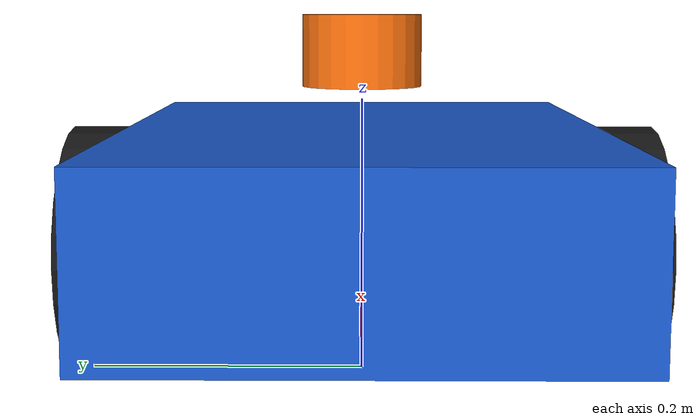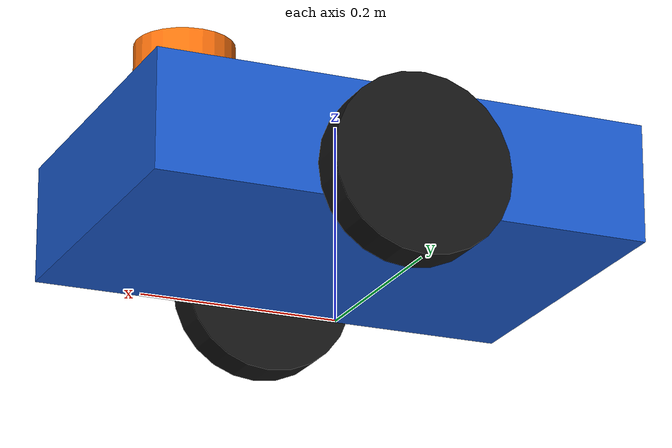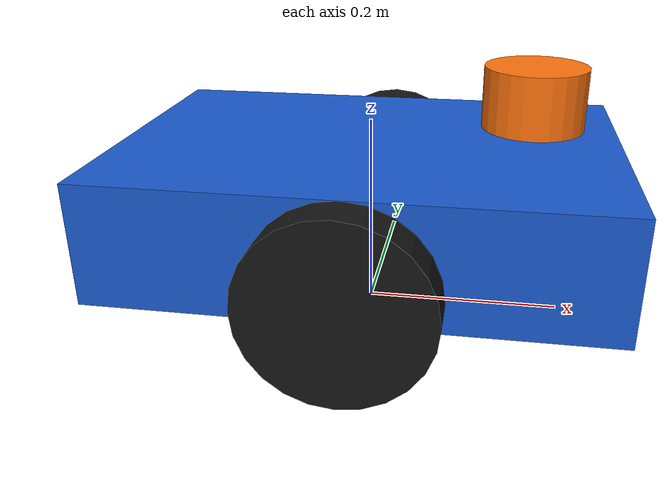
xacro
<?xml version="1.0"?>
<robot xmlns:xacro="http://www.ros.org/wiki/xacro" name="my_robot">
  <!-- 属性集中管理尺寸，修改底盘时不会遗漏 visual/collision/inertial。 -->
  <xacro:property name="base_length" value="0.50"/>
  <xacro:property name="base_width" value="0.34"/>
  <xacro:property name="base_height" value="0.12"/>
  <xacro:property name="wheel_radius" value="0.09"/>
  <xacro:property name="wheel_width" value="0.04"/>

  <material name="blue"><color rgba="0.1 0.35 0.8 1.0"/></material>
  <material name="dark"><color rgba="0.08 0.08 0.08 1.0"/></material>
  <material name="orange"><color rgba="1.0 0.45 0.05 1.0"/></material>

  <link name="base_link">
    <visual>
      <origin xyz="0 0 0.12"/>
      <geometry><box size="${base_length} ${base_width} ${base_height}"/></geometry>
      <material name="blue"/>
    </visual>
    <collision>
      <origin xyz="0 0 0.12"/>
      <geometry><box size="${base_length} ${base_width} ${base_height}"/></geometry>
    </collision>
    <inertial>
      <origin xyz="0 0 0.12"/>
      <mass value="8.0"/>
      <inertia ixx="0.09" ixy="0" ixz="0" iyy="0.18" iyz="0" izz="0.23"/>
    </inertial>
  </link>

  <!-- 一个宏生成左右车轮，突出“结构相同、参数不同”的复用。 -->
  <xacro:macro name="wheel" params="name y">
    <link name="${name}_wheel_link">
      <visual>
        <origin rpy="${pi/2} 0 0"/>
        <geometry><cylinder radius="${wheel_radius}" length="${wheel_width}"/></geometry>
        <material name="dark"/>
      </visual>
      <collision>
        <origin rpy="${pi/2} 0 0"/>
        <geometry><cylinder radius="${wheel_radius}" length="${wheel_width}"/></geometry>
      </collision>
      <inertial>
        <mass value="0.5"/>
        <inertia ixx="0.002" ixy="0" ixz="0" iyy="0.002" iyz="0" izz="0.001"/>
      </inertial>
    </link>
    <joint name="${name}_wheel_joint" type="continuous">
      <parent link="base_link"/>
      <child link="${name}_wheel_link"/>
      <origin xyz="0 ${y} 0.09"/>
      <axis xyz="0 1 0"/>
    </joint>
  </xacro:macro>

  <xacro:wheel name="left" y="0.19"/>
  <xacro:wheel name="right" y="-0.19"/>

  <link name="laser_link">
    <visual>
      <geometry><cylinder radius="0.05" length="0.06"/></geometry>
      <material name="orange"/>
    </visual>
    <collision><geometry><cylinder radius="0.05" length="0.06"/></geometry></collision>
    <inertial>
      <mass value="0.2"/>
      <inertia ixx="0.0002" ixy="0" ixz="0" iyy="0.0002" iyz="0" izz="0.0002"/>
    </inertial>
  </link>
  <joint name="laser_joint" type="fixed">
    <parent link="base_link"/>
    <child link="laser_link"/>
    <origin xyz="0.16 0 0.23"/>
  </joint>
</robot>
